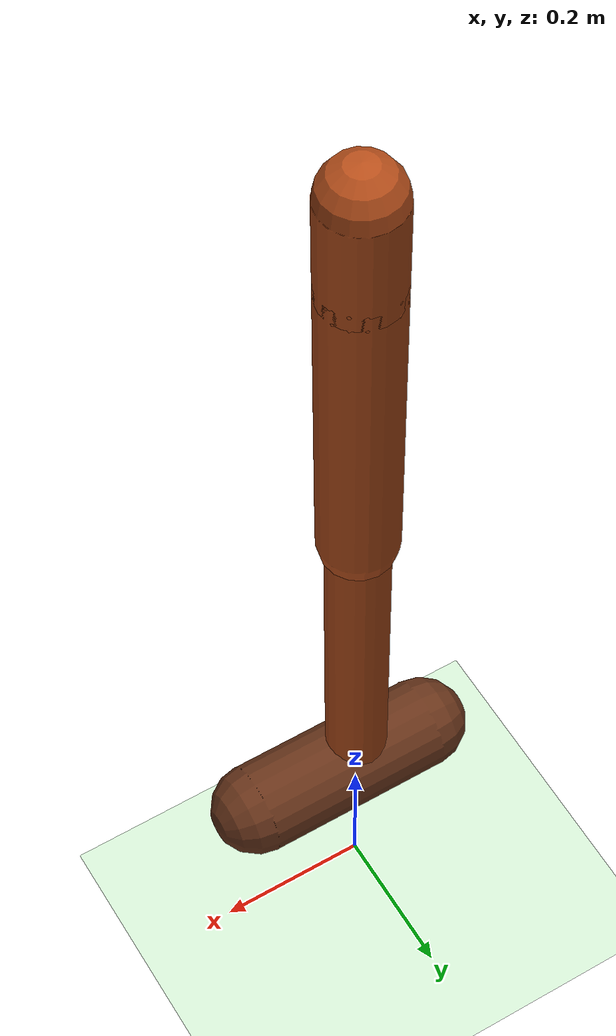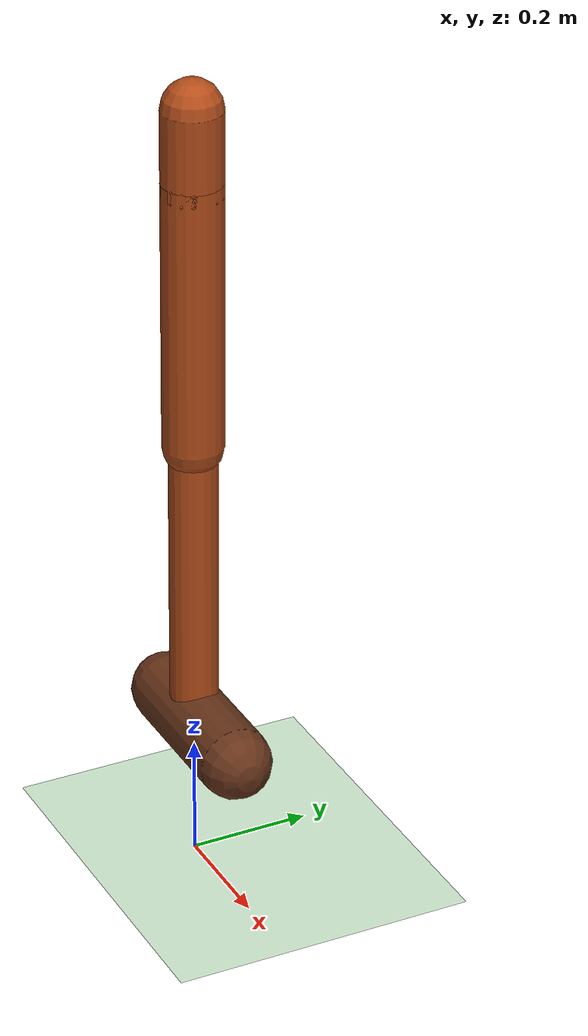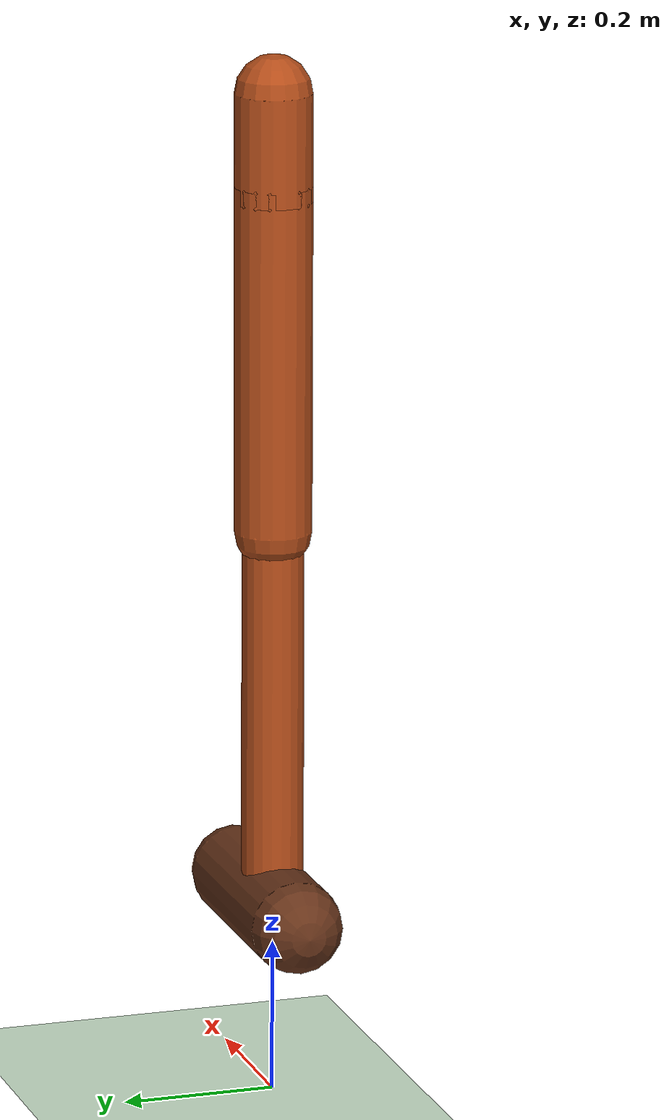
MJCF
<mujoco model="walker2d">
    <option timestep="0.008" gravity="0 0 -9.81"/>

    <default>
        <joint armature="0.01" damping="0.1" limited="true"/>
        <geom contype="1" conaffinity="1" condim="3" friction="0.7 0.1 0.1" margin="0.001"/>
    </default>

    <worldbody>
        <!-- Ground plane -->
        <geom type="plane" size="50 50 0.1" rgba="0.8 0.9 0.8 1"/>

        <!-- Torso -->
        <body name="torso" pos="0 0 1.25">
            <joint name="root" type="free"/>
            <geom name="torso_geom" type="capsule" fromto="0 0 -0.07 0 0 0.07" size="0.05" rgba="0.7 0.3 0.1 1"/>

            <!-- Right thigh -->
            <body name="right_thigh" pos="0 0 -0.05">
                <joint name="right_hip" type="hinge" axis="0 1 0" range="-150 20"/>
                <geom type="capsule" fromto="0 0 0 0 0 -0.45" size="0.05" rgba="0.7 0.3 0.1 1"/>

                <body name="right_leg" pos="0 0 -0.45">
                    <joint name="right_knee" type="hinge" axis="0 1 0" range="-150 0"/>
                    <geom type="capsule" fromto="0 0 0 0 0 -0.5" size="0.04" rgba="0.7 0.3 0.1 1"/>

                    <body name="right_foot" pos="0 0 -0.5">
                        <joint name="right_ankle" type="hinge" axis="0 1 0" range="-45 45"/>
                        <geom type="capsule" fromto="-0.1 0 0 0.15 0 0" size="0.06" rgba="0.4 0.2 0.1 1"/>
                    </body>
                </body>
            </body>

            <!-- Left thigh -->
            <body name="left_thigh" pos="0 0 -0.05">
                <joint name="left_hip" type="hinge" axis="0 1 0" range="-150 20"/>
                <geom type="capsule" fromto="0 0 0 0 0 -0.45" size="0.05" rgba="0.7 0.3 0.1 1"/>

                <body name="left_leg" pos="0 0 -0.45">
                    <joint name="left_knee" type="hinge" axis="0 1 0" range="-150 0"/>
                    <geom type="capsule" fromto="0 0 0 0 0 -0.5" size="0.04" rgba="0.7 0.3 0.1 1"/>

                    <body name="left_foot" pos="0 0 -0.5">
                        <joint name="left_ankle" type="hinge" axis="0 1 0" range="-45 45"/>
                        <geom type="capsule" fromto="-0.1 0 0 0.15 0 0" size="0.06" rgba="0.4 0.2 0.1 1"/>
                    </body>
                </body>
            </body>
        </body>
    </worldbody>

    <actuator>
        <motor joint="right_hip" ctrlrange="-1 1" gear="100"/>
        <motor joint="right_knee" ctrlrange="-1 1" gear="100"/>
        <motor joint="right_ankle" ctrlrange="-1 1" gear="100"/>
        <motor joint="left_hip" ctrlrange="-1 1" gear="100"/>
        <motor joint="left_knee" ctrlrange="-1 1" gear="100"/>
        <motor joint="left_ankle" ctrlrange="-1 1" gear="100"/>
    </actuator>

    <sensor>
        <!-- Torso sensors -->
        <framepos objtype="body" objname="torso"/>
        <framequat objtype="body" objname="torso"/>
        <framelinvel objtype="body" objname="torso"/>
        <frameangvel objtype="body" objname="torso"/>

        <!-- Joint position sensors -->
        <jointpos joint="right_hip"/>
        <jointpos joint="right_knee"/>
        <jointpos joint="right_ankle"/>
        <jointpos joint="left_hip"/>
        <jointpos joint="left_knee"/>
        <jointpos joint="left_ankle"/>

        <!-- Joint velocity sensors -->
        <jointvel joint="right_hip"/>
        <jointvel joint="right_knee"/>
        <jointvel joint="right_ankle"/>
        <jointvel joint="left_hip"/>
        <jointvel joint="left_knee"/>
        <jointvel joint="left_ankle"/>
    </sensor>
</mujoco>
